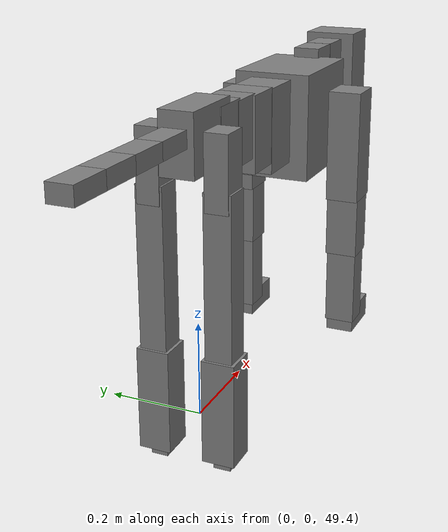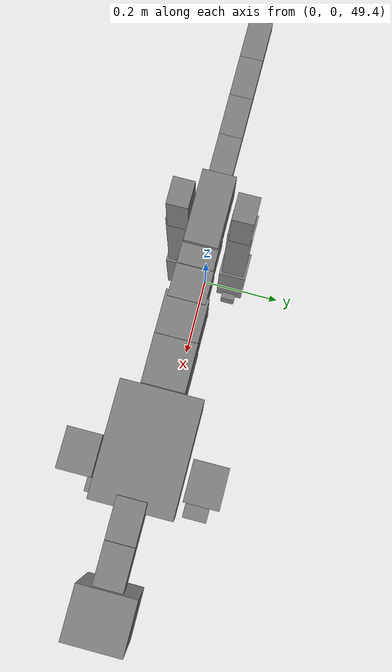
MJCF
<mujoco model="dog">

    <default>
        <joint armature="0.02" stiffness="1" damping="0.2" limited="true"/>
        <geom condim="3" friction="1 0.05 0.05" margin="0.01"/>
        <motor ctrllimited="true" ctrlrange="-1.0 1.0" forcelimited="true" gear="50"/>
    </default>

    <compiler inertiafromgeom="true" angle="radian"/>

    <option timestep="0.016" iterations="50" tolerance="1e-10" solver="Newton" jacobian="dense" cone="pyramidal"/>

    <size nconmax="20000" njmax="60000" nstack="5000000"/>
    <visual>
        <map force="0.1" zfar="30"/>
        <rgba haze="0.15 0.25 0.35 1"/>
        <quality shadowsize="2048"/>
        <global offwidth="800" offheight="800"/>
    </visual>

    <asset>
        <texture type="skybox" builtin="gradient" rgb1="0.3 0.5 0.7" rgb2="0 0 0" width="512" height="512"/>
        <texture name="texplane" type="2d" builtin="checker" rgb1=".2 .3 .4" rgb2=".1 0.15 0.2" width="512" height="512"
                 mark="cross" markrgb=".8 .8 .8"/>
        <texture name="texgeom" type="cube" builtin="flat" mark="cross" width="127" height="1278" rgb1="0.8 0.6 0.4"
                 rgb2="0.8 0.6 0.4" markrgb="1 1 1" random="0.01"/>

        <material name="matplane" reflectance="0.3" texture="texplane" texrepeat="1 1" texuniform="true"/>
        <material name="matgeom" texture="texgeom" texuniform="true" rgba="0.8 0.6 .4 1"/>
    </asset>

    <worldbody>
        <geom name="floor" pos="0 0 0" size="0 0 .25" type="plane" material="matplane" condim="3"/>

        <light directional="false" diffuse=".2 .2 .2" specular="0 0 0" pos="0 0 5" dir="0 0 -1" castshadow="false"/>
        <light mode="targetbodycom" target="torso" directional="false" diffuse=".8 .8 .8" specular="0.3 0.3 0.3"
               pos="0 0 4.0" dir="0 0 -1"/>

        <body name="root" pos="0 0 50">
            <freejoint name="root_1"/>
            <geom type="box" pos="0 0 -0.02" size="0.0774  0.0358  0.063" density="2030"/>

            <body name="spine1" pos="0.054 0 0">
                <joint name="spine1_y" axis="0 1 0" range="0 0.7" limited="true"/>
                <geom type="box" pos="0.02375 0 -0.03" size="0.04375  0.0375  0.05985" density="2030"/>

                <body name="spine2" pos="0.0612 0 0">
                    <joint name="spine2_y" axis="0 1 0" range="-0.15 0.15" limited="true"/>
                    <geom type="box" pos="0.03555  0  -0.04" size="0.04055  0.039  0.06615" density="2030"/>

                    <body name="spine3" pos="0.0730 0 0">
                        <joint name="spine3_y" axis="0 1 0" range="-0.15 0.15" limited="true"/>
                        <geom type="box" pos="0.03555  0  -0.057" size="0.04555  0.0445  0.081" density="2030"/>

                        <body name="spine4" pos="0.0780 0 0">
                            <joint name="spine4_y" axis="0 1 0" range="-0.15 0.15" limited="true"/>
                            <geom type="box" pos="0.05265  0  -0.07" size="0.05265  0.045  0.09135" density="2030"/>

                            <body name="torso" pos="0.1082 0 0">
                                <joint name="torso_y" axis="0 1 0" range="-0.15 0.15" limited="true"/>
                                <geom type="box" pos="0.11925  0  -0.085" size="0.11925  0.085  0.11745"
                                      density="2030"/>

                                <body name="neck1" pos="0.2160  0   0.0180">
                                    <joint name="neck1_y" axis="0 1 0" range="-1.2  -1" limited="true"/>
                                    <geom type="box" pos="0.0423  0  0" size="0.0423  0.03  0.036" density="2325"/>

                                    <body name="neck2" pos="0.0853  0  0">
                                        <joint name="neck2_y" axis="0 1 0" range="0.1  0" limited="true"/>
                                        <geom type="box" pos="0.0423  0  0" size="0.0423  0.03  0.036" density="2325"/>

                                        <body name="head" pos="0.0853  0  0">
                                            <joint name="head_y" axis="0 1 0" range="-0.3  -0.2" limited="true"/>
                                            <geom type="box" pos="0.0531  0  -0.055" size="0.0531  0.06  0.1044"
                                                  density="4030"/>

                                        </body>
                                    </body>
                                </body>

                                <body name="front_shoulder" pos="0.156  0   -0.0480">
                                    <joint name="front_shoulder_y" axis="0 1 0" range="-1 1.5" limited="true"/>
                                    <geom type="box" pos="0 0.13 -0.1000" size="0.0432  0.0369  0.1266" density="1158"/>
                                    <geom type="box" pos="0 -0.13 -0.1000" size="0.0432  0.0369  0.1266"
                                          density="1158"/>

                                    <body name="front_elbow" pos="0  0  -0.2000">
                                        <joint name="front_elbow_y" axis="0 1 0" range="-2 0" limited="true"/>
                                        <geom type="box" pos="0 0.13 -0.0809" size="0.0354  0.0362  0.0809"
                                              density="1081"/>
                                        <geom type="box" pos="0 -0.13 -0.0809" size="0.0354  0.0362  0.0809"
                                              density="1081"/>

                                        <body name="front_wrist" pos="0  0  -0.1618">
                                            <joint name="front_wrist_y" axis="0 1 0" range="-0.2 0" limited="true"/>
                                            <geom type="box" pos="0 0.13 -0.0788" size="0.0306  0.0340  0.0920"
                                                  density="1664"/>
                                            <geom type="box" pos="0 -0.13 -0.0788" size="0.0306  0.0340  0.0920"
                                                  density="1664"/>

                                            <body name="front_finger_end" pos="0  0  -0.1576">
                                                <joint name="front_finger_y" axis="0 1 0" range="-0.4 1"
                                                       limited="true"/>
                                                <geom type="box" pos="0.0315  0.13  -0.0126"
                                                      size="0.0577  0.0315  0.0276" density="1515"/>
                                                <geom type="box" pos="0.0315  -0.13  -0.0126"
                                                      size="0.0577  0.0315  0.0276" density="1515"/>

                                            </body>

                                        </body>
                                    </body>
                                </body>

                            </body>
                        </body>
                    </body>
                </body>
            </body>

            <body name="back_hip" pos="-0.03 0 -0.018">
                <joint name="back_hip_y" axis="0 1 0" range="-1.5 0.3" limited="true"/>
                <geom type="box" pos="0 0.07 -0.0527" size="0.0307  0.0241  0.0755" density="1154"/>
                <geom type="box" pos="0 -0.07 -0.0527" size="0.0307  0.0241  0.0755" density="1154"/>

                <body name="back_knee" pos="0  0  -0.1054">
                    <joint name="back_knee_y" axis="0 1 0" range="0 2.8" limited="true"/>
                    <geom type="box" pos="0 0.07 -0.1661" size="0.0286  0.0282  0.1817" density="1227"/>
                    <geom type="box" pos="0 -0.07 -0.1661" size="0.0286  0.0282  0.1817" density="1227"/>

                    <body name="back_ankle" pos="0  0  -0.3323">
                        <joint name="back_ankle_y" axis="0 1 0" range="-2.2 0" limited="true"/>
                        <geom type="box" pos="0 0.07 -0.0987" size="0.0343  0.0343  0.1100" density="1284"/>
                        <geom type="box" pos="0 -0.07 -0.0987" size="0.0343  0.0343  0.1100" density="1284"/>

                        <body name="back_toe_end" pos="0  0  -0.1974">
                            <joint name="back_toe_y" axis="0 1 0" range="-0.4 1" limited="true"/>
                            <geom type="box" pos="0.0181  0.07  -0.0093" size="0.0331  0.0181  0.0243" density="1515"/>
                            <geom type="box" pos="0.0181  -0.07  -0.0093" size="0.0331  0.0181  0.0243" density="1515"/>

                        </body>
                    </body>
                </body>
            </body>

            <body name="tail1" pos="-0.074 0 -0.006">
                <joint name="tail1_y" axis="0 1 0" range="-0.2 0.2" limited="true"/>
                <geom type="box" pos="-0.0536  0  0" size="0.045  0.025  0.0175" density="1587"/>

                <body name="tail2" pos="-0.09 0 0">
                    <joint name="tail2_y" axis="0 1 0" range="-0.2 0.2" limited="true"/>
                    <geom type="box" pos="-0.0536  0  0" size="0.045  0.025  0.0175" density="1587"/>

                    <body name="tail3" pos="-0.09 0 0">
                        <joint name="tail3_y" axis="0 1 0" range="-0.2 0.2" limited="true"/>
                        <geom type="box" pos="-0.0536  0  0" size="0.045  0.025  0.0175" density="1587"/>

                        <body name="tail4" pos="-0.09 0 0">
                            <joint name="tail4_y" axis="0 1 0" range="-0.2 0.2" limited="true"/>
                            <geom type="box" pos="-0.0536  0  0" size="0.045  0.025  0.0175" density="1587"/>

                        </body>
                    </body>
                </body>
            </body>
        </body>
    </worldbody>

    <actuator>
        <motor joint="spine1_y" forcerange="-150 150     "/>
        <motor joint="spine2_y" forcerange="-150 150     "/>
        <motor joint="spine3_y" forcerange="-150 150     "/>
        <motor joint="spine4_y" forcerange="-150 150     "/>
        <motor joint="torso_y" forcerange="-150 150     "/>
        <motor joint="neck1_y" forcerange="-100 100       "/>
        <motor joint="neck2_y" forcerange="-100 100       "/>
        <motor joint="head_y" forcerange="-150 150       "/>
        <motor joint="front_shoulder_y" forcerange="-173.72 172.21"/>
        <motor joint="front_elbow_y" forcerange="-165.24 197.83"/>
        <motor joint="front_wrist_y" forcerange="-139.81 132.31"/>
        <motor joint="front_finger_y" forcerange="-32.53 95.34"/>
        <motor joint="back_hip_y" forcerange="-256.87 264.20"/>
        <motor joint="back_knee_y" forcerange="-299.79 310.64"/>
        <motor joint="back_angle_y" forcerange="-211.73 236.30"/>
        <motor joint="back_toe_y" forcerange="-21.08 43.38"/>
        <motor joint="tail1_y" forcerange="-50 50     "/>
        <motor joint="tail2_y" forcerange="-50 50     "/>
        <motor joint="tail3_y" forcerange="-50 50     "/>
        <motor joint="tail4_y" forcerange="-50 50     "/>
    </actuator>
</mujoco>
